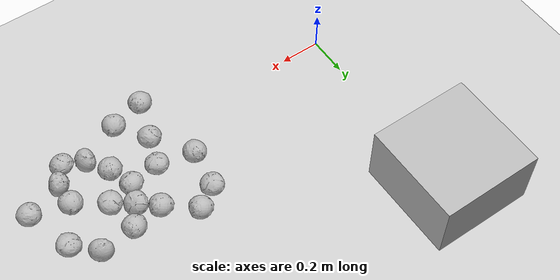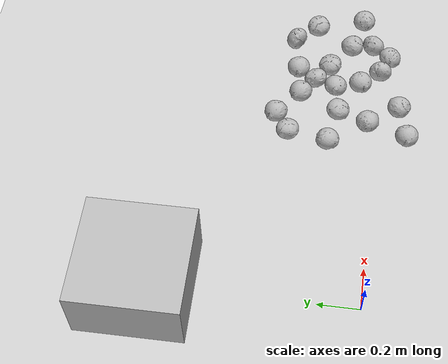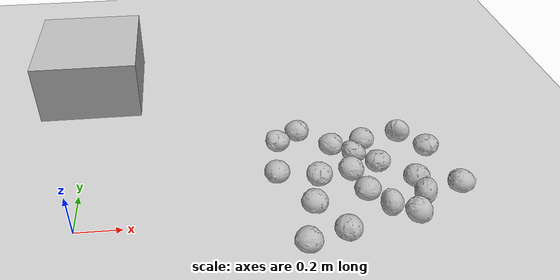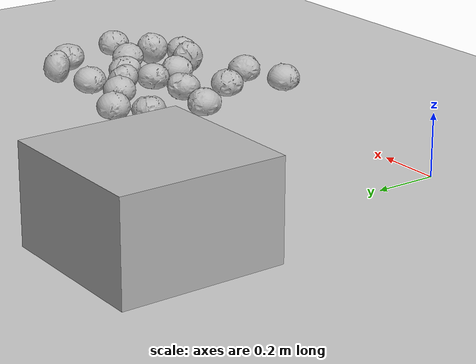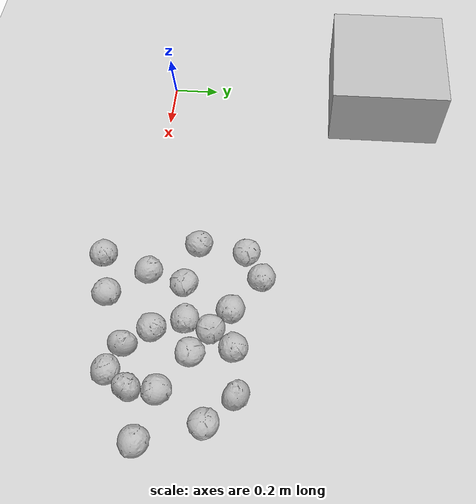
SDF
<sdf version="1.6">
 <world name="default">
  <model name="ground_plane">
   <static>1</static>
   <link name="link">
    <collision name="collision">
     <geometry><plane><normal>0 0 1</normal><size>100 100</size></plane></geometry>
     <surface>
      <contact><collide_bitmask>65535</collide_bitmask></contact>
      <friction><ode><mu>100</mu><mu2>50</mu2></ode></friction>
     </surface>
    </collision>
    <visual name="visual">
     <cast_shadows>0</cast_shadows>
     <geometry><plane><normal>0 0 1</normal><size>100 100</size></plane></geometry>
     <material>
      <script><uri>file://media/materials/scripts/gazebo.material</uri><name>Gazebo/Grey</name></script>
     </material>
    </visual>
   </link>
  </model>
  <light name="sun" type="directional">
   <pose>0 0 10 0 -0 0</pose>
   <diffuse>0.8 0.8 0.8 1</diffuse>
   <specular>0.2 0.2 0.2 1</specular>
   <attenuation>
    <range>1000</range>
    <constant>0.9</constant>
    <linear>0.01</linear>
    <quadratic>0.001</quadratic>
   </attenuation>
   <direction>-0.5 0.1 -0.9</direction>
  </light>
  <model name="mytable">
   <static>1</static>
   <link name="link">
    <inertial>
     <mass>100</mass>
     <inertia><ixx>0.083</ixx><ixy>0</ixy><ixz>0</ixz><iyy>0.083</iyy><iyz>0</iyz><izz>0.083</izz></inertia>
    </inertial>
    <collision name="collision"><geometry><box><size>0.5 0.5 0.4</size></box></geometry></collision>
    <visual name="visual"><geometry><box><size>0.5 0.5 0.4</size></box></geometry></visual>
   </link>
   <pose>0 1 0.1 0 -0 0</pose>
  </model>
  <gravity>0 0 -9.8</gravity>
  <magnetic_field>6e-06 2.3e-05 -4.2e-05</magnetic_field>
  <atmosphere type="adiabatic"/>
  <physics name="default_physics" default="0" type="ode">
   <max_step_size>0.001</max_step_size>
   <real_time_factor>1</real_time_factor>
   <real_time_update_rate>1000</real_time_update_rate>
  </physics>
  <scene><ambient>0.4 0.4 0.4 1</ambient><background>0.7 0.7 0.7 1</background><shadows>1</shadows></scene>
  <audio><device>default</device></audio>
  <spherical_coordinates>
   <surface_model>EARTH_WGS84</surface_model>
   <latitude_deg>0</latitude_deg>
   <longitude_deg>0</longitude_deg>
   <elevation>0</elevation>
   <heading_deg>0</heading_deg>
  </spherical_coordinates>
  <model name="cabbage_1">
   <link name="link">
    <inertial>
     <mass>1</mass>
     <inertia><ixx>0.001</ixx><ixy>0</ixy><ixz>0</ixz><iyy>0.001</iyy><iyz>0</iyz><izz>0.001</izz></inertia>
    </inertial>
    <collision name="collision">
     <geometry>
      <mesh><scale>0.001 0.001 0.001</scale><uri>model://cabbage/cabbage_single.dae</uri></mesh>
     </geometry>
     <surface>
      <friction><ode><mu>0.8</mu><mu2>0.8</mu2></ode></friction>
      <contact><ode><max_vel>0.05</max_vel><min_depth>0.0001</min_depth></ode></contact>
     </surface>
    </collision>
    <visual name="visual">
     <geometry>
      <mesh><scale>0.001 0.001 0.001</scale><uri>model://cabbage/cabbage_single.dae</uri></mesh>
     </geometry>
     <material><script><uri>model://cabbage/texture.material</uri><name>CabbageTexture</name></script></material>
    </visual>
   </link>
   <pose>1.57456 0.326081 0.048839 -1.61249 -0.167841 0.045201</pose>
  </model>
  <model name="cabbage_2">
   <link name="link">
    <inertial>
     <mass>1</mass>
     <inertia><ixx>0.001</ixx><ixy>0</ixy><ixz>0</ixz><iyy>0.001</iyy><iyz>0</iyz><izz>0.001</izz></inertia>
    </inertial>
    <collision name="collision">
     <geometry>
      <mesh><scale>0.001 0.001 0.001</scale><uri>model://cabbage/cabbage_single.dae</uri></mesh>
     </geometry>
     <surface>
      <friction><ode><mu>0.8</mu><mu2>0.8</mu2></ode></friction>
      <contact><ode><max_vel>0.05</max_vel><min_depth>0.0001</min_depth></ode></contact>
     </surface>
    </collision>
    <visual name="visual">
     <geometry>
      <mesh><scale>0.001 0.001 0.001</scale><uri>model://cabbage/cabbage_single.dae</uri></mesh>
     </geometry>
     <material><script><uri>model://cabbage/texture.material</uri><name>CabbageTexture</name></script></material>
    </visual>
   </link>
   <pose>1.14057 0.381304 0.051489 1.57452 0.007693 -1.32737</pose>
  </model>
  <model name="cabbage_3">
   <link name="link">
    <inertial>
     <mass>1</mass>
     <inertia><ixx>0.001</ixx><ixy>0</ixy><ixz>0</ixz><iyy>0.001</iyy><iyz>0</iyz><izz>0.001</izz></inertia>
    </inertial>
    <collision name="collision">
     <geometry>
      <mesh><scale>0.001 0.001 0.001</scale><uri>model://cabbage/cabbage_single.dae</uri></mesh>
     </geometry>
     <surface>
      <friction><ode><mu>0.8</mu><mu2>0.8</mu2></ode></friction>
      <contact><ode><max_vel>0.05</max_vel><min_depth>0.0001</min_depth></ode></contact>
     </surface>
    </collision>
    <visual name="visual">
     <geometry>
      <mesh><scale>0.001 0.001 0.001</scale><uri>model://cabbage/cabbage_single.dae</uri></mesh>
     </geometry>
     <material><script><uri>model://cabbage/texture.material</uri><name>CabbageTexture</name></script></material>
    </visual>
   </link>
   <pose>1.30644 -0.01143 0.059012 0.126485 0.61655 -1.5552</pose>
  </model>
  <model name="cabbage_4">
   <link name="link">
    <inertial>
     <mass>1</mass>
     <inertia><ixx>0.001</ixx><ixy>0</ixy><ixz>0</ixz><iyy>0.001</iyy><iyz>0</iyz><izz>0.001</izz></inertia>
    </inertial>
    <collision name="collision">
     <geometry>
      <mesh><scale>0.001 0.001 0.001</scale><uri>model://cabbage/cabbage_single.dae</uri></mesh>
     </geometry>
     <surface>
      <friction><ode><mu>0.8</mu><mu2>0.8</mu2></ode></friction>
      <contact><ode><max_vel>0.05</max_vel><min_depth>0.0001</min_depth></ode></contact>
     </surface>
    </collision>
    <visual name="visual">
     <geometry>
      <mesh><scale>0.001 0.001 0.001</scale><uri>model://cabbage/cabbage_single.dae</uri></mesh>
     </geometry>
     <material><script><uri>model://cabbage/texture.material</uri><name>CabbageTexture</name></script></material>
    </visual>
   </link>
   <pose>1.09735 -0.117523 0.051511 1.57615 0.008774 -3.08093</pose>
  </model>
  <model name="cabbage_5">
   <link name="link">
    <inertial>
     <mass>1</mass>
     <inertia><ixx>0.001</ixx><ixy>0</ixy><ixz>0</ixz><iyy>0.001</iyy><iyz>0</iyz><izz>0.001</izz></inertia>
    </inertial>
    <collision name="collision">
     <geometry>
      <mesh><scale>0.001 0.001 0.001</scale><uri>model://cabbage/cabbage_single.dae</uri></mesh>
     </geometry>
     <surface>
      <friction><ode><mu>0.8</mu><mu2>0.8</mu2></ode></friction>
      <contact><ode><max_vel>0.05</max_vel><min_depth>0.0001</min_depth></ode></contact>
     </surface>
    </collision>
    <visual name="visual">
     <geometry>
      <mesh><scale>0.001 0.001 0.001</scale><uri>model://cabbage/cabbage_single.dae</uri></mesh>
     </geometry>
     <material><script><uri>model://cabbage/texture.material</uri><name>CabbageTexture</name></script></material>
    </visual>
   </link>
   <pose>0.928717 -0.160872 0.051512 1.57599 0.008713 -0.718261</pose>
  </model>
  <model name="cabbage_6">
   <link name="link">
    <inertial>
     <mass>1</mass>
     <inertia><ixx>0.001</ixx><ixy>0</ixy><ixz>0</ixz><iyy>0.001</iyy><iyz>0</iyz><izz>0.001</izz></inertia>
    </inertial>
    <collision name="collision">
     <geometry>
      <mesh><scale>0.001 0.001 0.001</scale><uri>model://cabbage/cabbage_single.dae</uri></mesh>
     </geometry>
     <surface>
      <friction><ode><mu>0.8</mu><mu2>0.8</mu2></ode></friction>
      <contact><ode><max_vel>0.05</max_vel><min_depth>0.0001</min_depth></ode></contact>
     </surface>
    </collision>
    <visual name="visual">
     <geometry>
      <mesh><scale>0.001 0.001 0.001</scale><uri>model://cabbage/cabbage_single.dae</uri></mesh>
     </geometry>
     <material><script><uri>model://cabbage/texture.material</uri><name>CabbageTexture</name></script></material>
    </visual>
   </link>
   <pose>1.40496 -0.059185 0.056367 1.93444 -0.354404 1.27105</pose>
  </model>
  <model name="cabbage_7">
   <link name="link">
    <inertial>
     <mass>1</mass>
     <inertia><ixx>0.001</ixx><ixy>0</ixy><ixz>0</ixz><iyy>0.001</iyy><iyz>0</iyz><izz>0.001</izz></inertia>
    </inertial>
    <collision name="collision">
     <geometry>
      <mesh><scale>0.001 0.001 0.001</scale><uri>model://cabbage/cabbage_single.dae</uri></mesh>
     </geometry>
     <surface>
      <friction><ode><mu>0.8</mu><mu2>0.8</mu2></ode></friction>
      <contact><ode><max_vel>0.05</max_vel><min_depth>0.0001</min_depth></ode></contact>
     </surface>
    </collision>
    <visual name="visual">
     <geometry>
      <mesh><scale>0.001 0.001 0.001</scale><uri>model://cabbage/cabbage_single.dae</uri></mesh>
     </geometry>
     <material><script><uri>model://cabbage/texture.material</uri><name>CabbageTexture</name></script></material>
    </visual>
   </link>
   <pose>0.991551 0.034978 0.05151 1.57605 0.0089 1.37534</pose>
  </model>
  <model name="cabbage_8">
   <link name="link">
    <inertial>
     <mass>1</mass>
     <inertia><ixx>0.001</ixx><ixy>0</ixy><ixz>0</ixz><iyy>0.001</iyy><iyz>0</iyz><izz>0.001</izz></inertia>
    </inertial>
    <collision name="collision">
     <geometry>
      <mesh><scale>0.001 0.001 0.001</scale><uri>model://cabbage/cabbage_single.dae</uri></mesh>
     </geometry>
     <surface>
      <friction><ode><mu>0.8</mu><mu2>0.8</mu2></ode></friction>
      <contact><ode><max_vel>0.05</max_vel><min_depth>0.0001</min_depth></ode></contact>
     </surface>
    </collision>
    <visual name="visual">
     <geometry>
      <mesh><scale>0.001 0.001 0.001</scale><uri>model://cabbage/cabbage_single.dae</uri></mesh>
     </geometry>
     <material><script><uri>model://cabbage/texture.material</uri><name>CabbageTexture</name></script></material>
    </visual>
   </link>
   <pose>1.23104 0.085217 0.051511 1.57606 0.008828 -0.174614</pose>
  </model>
  <model name="cabbage_9">
   <link name="link">
    <inertial>
     <mass>1</mass>
     <inertia><ixx>0.001</ixx><ixy>0</ixy><ixz>0</ixz><iyy>0.001</iyy><iyz>0</iyz><izz>0.001</izz></inertia>
    </inertial>
    <collision name="collision">
     <geometry>
      <mesh><scale>0.001 0.001 0.001</scale><uri>model://cabbage/cabbage_single.dae</uri></mesh>
     </geometry>
     <surface>
      <friction><ode><mu>0.8</mu><mu2>0.8</mu2></ode></friction>
      <contact><ode><max_vel>0.05</max_vel><min_depth>0.0001</min_depth></ode></contact>
     </surface>
    </collision>
    <visual name="visual">
     <geometry>
      <mesh><scale>0.001 0.001 0.001</scale><uri>model://cabbage/cabbage_single.dae</uri></mesh>
     </geometry>
     <material><script><uri>model://cabbage/texture.material</uri><name>CabbageTexture</name></script></material>
    </visual>
   </link>
   <pose>1.29252 0.406241 0.051512 1.57607 0.008751 -0.691867</pose>
  </model>
  <model name="cabbage_10">
   <link name="link">
    <inertial>
     <mass>1</mass>
     <inertia><ixx>0.001</ixx><ixy>0</ixy><ixz>0</ixz><iyy>0.001</iyy><iyz>0</iyz><izz>0.001</izz></inertia>
    </inertial>
    <collision name="collision">
     <geometry>
      <mesh><scale>0.001 0.001 0.001</scale><uri>model://cabbage/cabbage_single.dae</uri></mesh>
     </geometry>
     <surface>
      <friction><ode><mu>0.8</mu><mu2>0.8</mu2></ode></friction>
      <contact><ode><max_vel>0.05</max_vel><min_depth>0.0001</min_depth></ode></contact>
     </surface>
    </collision>
    <visual name="visual">
     <geometry>
      <mesh><scale>0.001 0.001 0.001</scale><uri>model://cabbage/cabbage_single.dae</uri></mesh>
     </geometry>
     <material><script><uri>model://cabbage/texture.material</uri><name>CabbageTexture</name></script></material>
    </visual>
   </link>
   <pose>1.22527 0.31213 0.051597 -1.67449 -0.615033 -2.33146</pose>
  </model>
  <model name="cabbage_11">
   <link name="link">
    <inertial>
     <mass>1</mass>
     <inertia><ixx>0.001</ixx><ixy>0</ixy><ixz>0</ixz><iyy>0.001</iyy><iyz>0</iyz><izz>0.001</izz></inertia>
    </inertial>
    <collision name="collision">
     <geometry>
      <mesh><scale>0.001 0.001 0.001</scale><uri>model://cabbage/cabbage_single.dae</uri></mesh>
     </geometry>
     <surface>
      <friction><ode><mu>0.8</mu><mu2>0.8</mu2></ode></friction>
      <contact><ode><max_vel>0.05</max_vel><min_depth>0.0001</min_depth></ode></contact>
     </surface>
    </collision>
    <visual name="visual">
     <geometry>
      <mesh><scale>0.001 0.001 0.001</scale><uri>model://cabbage/cabbage_single.dae</uri></mesh>
     </geometry>
     <material><script><uri>model://cabbage/texture.material</uri><name>CabbageTexture</name></script></material>
    </visual>
   </link>
   <pose>1.46496 0.140337 0.052213 1.66288 -0.02075 -2.58458</pose>
  </model>
  <model name="cabbage_12">
   <link name="link">
    <inertial>
     <mass>1</mass>
     <inertia><ixx>0.001</ixx><ixy>0</ixy><ixz>0</ixz><iyy>0.001</iyy><iyz>0</iyz><izz>0.001</izz></inertia>
    </inertial>
    <collision name="collision">
     <geometry>
      <mesh><scale>0.001 0.001 0.001</scale><uri>model://cabbage/cabbage_single.dae</uri></mesh>
     </geometry>
     <surface>
      <friction><ode><mu>0.8</mu><mu2>0.8</mu2></ode></friction>
      <contact><ode><max_vel>0.05</max_vel><min_depth>0.0001</min_depth></ode></contact>
     </surface>
    </collision>
    <visual name="visual">
     <geometry>
      <mesh><scale>0.001 0.001 0.001</scale><uri>model://cabbage/cabbage_single.dae</uri></mesh>
     </geometry>
     <material><script><uri>model://cabbage/texture.material</uri><name>CabbageTexture</name></script></material>
    </visual>
   </link>
   <pose>1.00095 0.492131 0.051511 1.57618 0.008785 -1.23275</pose>
  </model>
  <model name="cabbage_13">
   <link name="link">
    <inertial>
     <mass>1</mass>
     <inertia><ixx>0.001</ixx><ixy>0</ixy><ixz>0</ixz><iyy>0.001</iyy><iyz>0</iyz><izz>0.001</izz></inertia>
    </inertial>
    <collision name="collision">
     <geometry>
      <mesh><scale>0.001 0.001 0.001</scale><uri>model://cabbage/cabbage_single.dae</uri></mesh>
     </geometry>
     <surface>
      <friction><ode><mu>0.8</mu><mu2>0.8</mu2></ode></friction>
      <contact><ode><max_vel>0.05</max_vel><min_depth>0.0001</min_depth></ode></contact>
     </surface>
    </collision>
    <visual name="visual">
     <geometry>
      <mesh><scale>0.001 0.001 0.001</scale><uri>model://cabbage/cabbage_single.dae</uri></mesh>
     </geometry>
     <material><script><uri>model://cabbage/texture.material</uri><name>CabbageTexture</name></script></material>
    </visual>
   </link>
   <pose>0.893653 0.423519 0.048854 -1.66156 -0.104822 -2.30078</pose>
  </model>
  <model name="cabbage_14">
   <link name="link">
    <inertial>
     <mass>1</mass>
     <inertia><ixx>0.001</ixx><ixy>0</ixy><ixz>0</ixz><iyy>0.001</iyy><iyz>0</iyz><izz>0.001</izz></inertia>
    </inertial>
    <collision name="collision">
     <geometry>
      <mesh><scale>0.001 0.001 0.001</scale><uri>model://cabbage/cabbage_single.dae</uri></mesh>
     </geometry>
     <surface>
      <friction><ode><mu>0.8</mu><mu2>0.8</mu2></ode></friction>
      <contact><ode><max_vel>0.05</max_vel><min_depth>0.0001</min_depth></ode></contact>
     </surface>
    </collision>
    <visual name="visual">
     <geometry>
      <mesh><scale>0.001 0.001 0.001</scale><uri>model://cabbage/cabbage_single.dae</uri></mesh>
     </geometry>
     <material><script><uri>model://cabbage/texture.material</uri><name>CabbageTexture</name></script></material>
    </visual>
   </link>
   <pose>1.64453 0.088984 0.051512 1.57612 0.008652 1.93974</pose>
  </model>
  <model name="cabbage_15">
   <link name="link">
    <inertial>
     <mass>1</mass>
     <inertia><ixx>0.001</ixx><ixy>0</ixy><ixz>0</ixz><iyy>0.001</iyy><iyz>0</iyz><izz>0.001</izz></inertia>
    </inertial>
    <collision name="collision">
     <geometry>
      <mesh><scale>0.001 0.001 0.001</scale><uri>model://cabbage/cabbage_single.dae</uri></mesh>
     </geometry>
     <surface>
      <friction><ode><mu>0.8</mu><mu2>0.8</mu2></ode></friction>
      <contact><ode><max_vel>0.05</max_vel><min_depth>0.0001</min_depth></ode></contact>
     </surface>
    </collision>
    <visual name="visual">
     <geometry>
      <mesh><scale>0.001 0.001 0.001</scale><uri>model://cabbage/cabbage_single.dae</uri></mesh>
     </geometry>
     <material><script><uri>model://cabbage/texture.material</uri><name>CabbageTexture</name></script></material>
    </visual>
   </link>
   <pose>0.862869 0.224082 0.051512 1.57598 0.008671 0.293372</pose>
  </model>
  <model name="cabbage_16">
   <link name="link">
    <inertial>
     <mass>1</mass>
     <inertia><ixx>0.001</ixx><ixy>0</ixy><ixz>0</ixz><iyy>0.001</iyy><iyz>0</iyz><izz>0.001</izz></inertia>
    </inertial>
    <collision name="collision">
     <geometry>
      <mesh><scale>0.001 0.001 0.001</scale><uri>model://cabbage/cabbage_single.dae</uri></mesh>
     </geometry>
     <surface>
      <friction><ode><mu>0.8</mu><mu2>0.8</mu2></ode></friction>
      <contact><ode><max_vel>0.05</max_vel><min_depth>0.0001</min_depth></ode></contact>
     </surface>
    </collision>
    <visual name="visual">
     <geometry>
      <mesh><scale>0.001 0.001 0.001</scale><uri>model://cabbage/cabbage_single.dae</uri></mesh>
     </geometry>
     <material><script><uri>model://cabbage/texture.material</uri><name>CabbageTexture</name></script></material>
    </visual>
   </link>
   <pose>1.46329 0.035526 0.061369 -2.99437 -0.319282 -2.10846</pose>
  </model>
  <model name="cabbage_17">
   <link name="link">
    <inertial>
     <mass>1</mass>
     <inertia><ixx>0.001</ixx><ixy>0</ixy><ixz>0</ixz><iyy>0.001</iyy><iyz>0</iyz><izz>0.001</izz></inertia>
    </inertial>
    <collision name="collision">
     <geometry>
      <mesh><scale>0.001 0.001 0.001</scale><uri>model://cabbage/cabbage_single.dae</uri></mesh>
     </geometry>
     <surface>
      <friction><ode><mu>0.8</mu><mu2>0.8</mu2></ode></friction>
      <contact><ode><max_vel>0.05</max_vel><min_depth>0.0001</min_depth></ode></contact>
     </surface>
    </collision>
    <visual name="visual">
     <geometry>
      <mesh><scale>0.001 0.001 0.001</scale><uri>model://cabbage/cabbage_single.dae</uri></mesh>
     </geometry>
     <material><script><uri>model://cabbage/texture.material</uri><name>CabbageTexture</name></script></material>
    </visual>
   </link>
   <pose>1.32065 0.243851 0.04885 -1.66245 -0.17158 -0.701226</pose>
  </model>
  <model name="cabbage_18">
   <link name="link">
    <inertial>
     <mass>1</mass>
     <inertia><ixx>0.001</ixx><ixy>0</ixy><ixz>0</ixz><iyy>0.001</iyy><iyz>0</iyz><izz>0.001</izz></inertia>
    </inertial>
    <collision name="collision">
     <geometry>
      <mesh><scale>0.001 0.001 0.001</scale><uri>model://cabbage/cabbage_single.dae</uri></mesh>
     </geometry>
     <surface>
      <friction><ode><mu>0.8</mu><mu2>0.8</mu2></ode></friction>
      <contact><ode><max_vel>0.05</max_vel><min_depth>0.0001</min_depth></ode></contact>
     </surface>
    </collision>
    <visual name="visual">
     <geometry>
      <mesh><scale>0.001 0.001 0.001</scale><uri>model://cabbage/cabbage_single.dae</uri></mesh>
     </geometry>
     <material><script><uri>model://cabbage/texture.material</uri><name>CabbageTexture</name></script></material>
    </visual>
   </link>
   <pose>1.04361 0.186447 0.048843 -1.61237 -0.167846 1.84013</pose>
  </model>
  <model name="cabbage_19">
   <link name="link">
    <inertial>
     <mass>1</mass>
     <inertia><ixx>0.001</ixx><ixy>0</ixy><ixz>0</ixz><iyy>0.001</iyy><iyz>0</iyz><izz>0.001</izz></inertia>
    </inertial>
    <collision name="collision">
     <geometry>
      <mesh><scale>0.001 0.001 0.001</scale><uri>model://cabbage/cabbage_single.dae</uri></mesh>
     </geometry>
     <surface>
      <friction><ode><mu>0.8</mu><mu2>0.8</mu2></ode></friction>
      <contact><ode><max_vel>0.05</max_vel><min_depth>0.0001</min_depth></ode></contact>
     </surface>
    </collision>
    <visual name="visual">
     <geometry>
      <mesh><scale>0.001 0.001 0.001</scale><uri>model://cabbage/cabbage_single.dae</uri></mesh>
     </geometry>
     <material><script><uri>model://cabbage/texture.material</uri><name>CabbageTexture</name></script></material>
    </visual>
   </link>
   <pose>1.47262 0.435702 0.059013 0.126479 0.616305 -0.499541</pose>
  </model>
  <model name="cabbage_20">
   <link name="link">
    <inertial>
     <mass>1</mass>
     <inertia><ixx>0.001</ixx><ixy>0</ixy><ixz>0</ixz><iyy>0.001</iyy><iyz>0</iyz><izz>0.001</izz></inertia>
    </inertial>
    <collision name="collision">
     <geometry>
      <mesh><scale>0.001 0.001 0.001</scale><uri>model://cabbage/cabbage_single.dae</uri></mesh>
     </geometry>
     <surface>
      <friction><ode><mu>0.8</mu><mu2>0.8</mu2></ode></friction>
      <contact><ode><max_vel>0.05</max_vel><min_depth>0.0001</min_depth></ode></contact>
     </surface>
    </collision>
    <visual name="visual">
     <geometry>
      <mesh><scale>0.001 0.001 0.001</scale><uri>model://cabbage/cabbage_single.dae</uri></mesh>
     </geometry>
     <material><script><uri>model://cabbage/texture.material</uri><name>CabbageTexture</name></script></material>
    </visual>
   </link>
   <pose>1.19315 0.207963 0.054606 1.55184 0.375672 -0.878284</pose>
  </model>
 </world>
</sdf>
